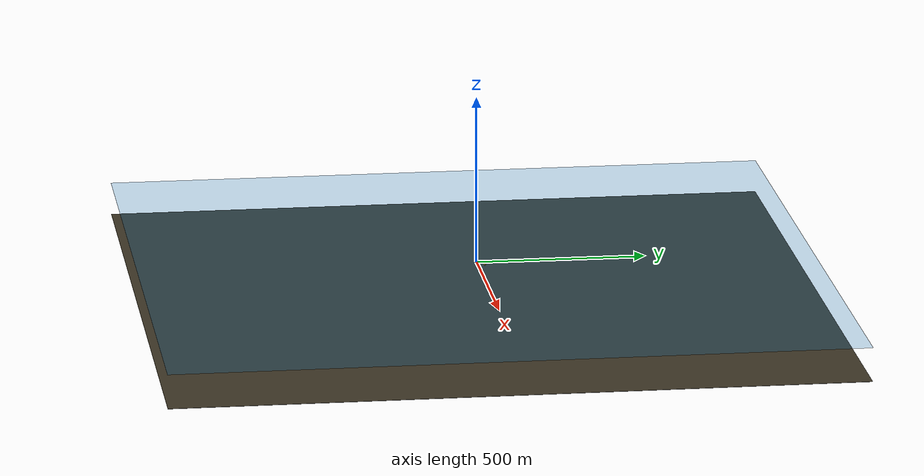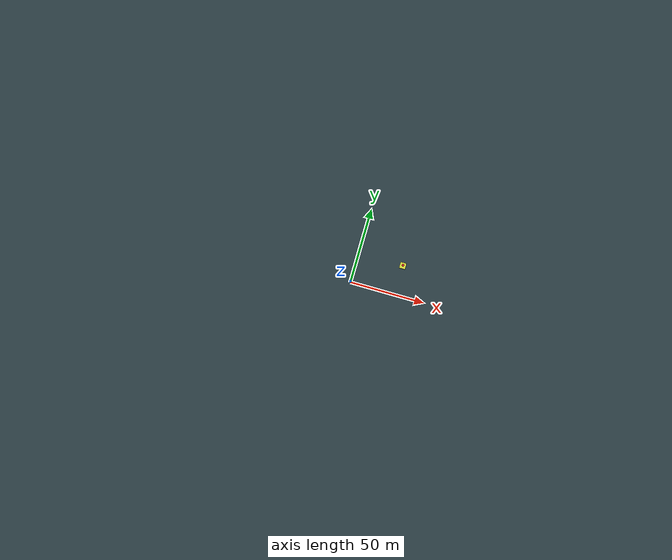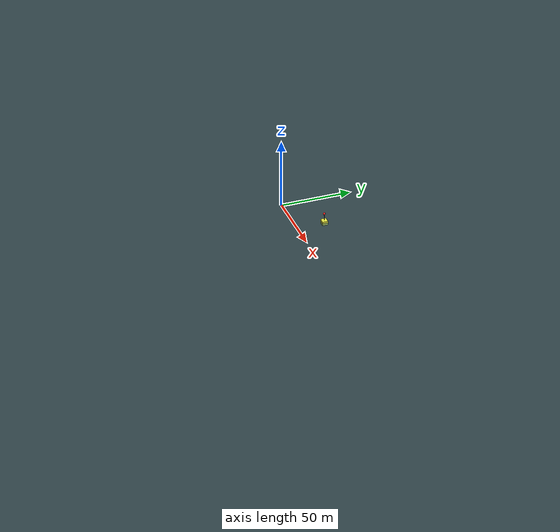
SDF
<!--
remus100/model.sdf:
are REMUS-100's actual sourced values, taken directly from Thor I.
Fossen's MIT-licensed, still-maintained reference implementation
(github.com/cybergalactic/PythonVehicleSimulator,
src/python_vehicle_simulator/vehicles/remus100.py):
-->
<?xml version="1.0"?>
<sdf version="1.9">
  <world name="underwater_harbor_remus">

    <physics name="1ms" type="ignored">
      <max_step_size>0.004</max_step_size>
      <real_time_factor>1.0</real_time_factor>
    </physics>

    <plugin filename="gz-sim-physics-system"
            name="gz::sim::systems::Physics"/>
    <plugin filename="gz-sim-user-commands-system"
            name="gz::sim::systems::UserCommands"/>
    <plugin filename="gz-sim-scene-broadcaster-system"
            name="gz::sim::systems::SceneBroadcaster"/>
    <plugin filename="gz-sim-imu-system"
            name="gz::sim::systems::Imu"/>

    <plugin filename="gz-sim-buoyancy-system"
            name="gz::sim::systems::Buoyancy">
      <graded_buoyancy>
        <default_density>1025.0</default_density>
        <density_change>
          <above_depth>0</above_depth>
          <density>1.0</density>
        </density_change>
      </graded_buoyancy>
    </plugin>

    <gravity>0 0 -9.81</gravity>
    <magnetic_field>5.5645e-6 22.8758e-6 -42.3884e-6</magnetic_field>

    <spherical_coordinates>
      <surface_model>EARTH_WGS84</surface_model>
      <world_frame_orientation>ENU</world_frame_orientation>
      <latitude_deg>-33.724223</latitude_deg>
      <longitude_deg>150.679736</longitude_deg>
      <elevation>0</elevation>
      <heading_deg>0</heading_deg>
    </spherical_coordinates>

    <scene>
      <ambient>0.4 0.5 0.6 1.0</ambient>
      <background>0.1 0.25 0.45 1.0</background>
      <grid>false</grid>
    </scene>

    <light type="directional" name="sun">
      <cast_shadows>true</cast_shadows>
      <pose>0 0 50 0 0 0</pose>
      <diffuse>0.9 0.95 1.0 1</diffuse>
      <specular>0.2 0.2 0.2 1</specular>
      <direction>0.3 0.3 -1</direction>
    </light>

    <model name="seabed">
      <static>true</static>
      <pose>0 0 -100 0 0 0</pose>
      <link name="seabed_link">
        <collision name="seabed_collision">
          <geometry>
            <box><size>2000 2000 1.0</size></box>
          </geometry>
        </collision>
        <visual name="seabed_visual">
          <geometry>
            <box><size>2000 2000 1.0</size></box>
          </geometry>
          <material>
            <ambient>0.20 0.18 0.12 1</ambient>
            <diffuse>0.25 0.22 0.15 1</diffuse>
          </material>
        </visual>
      </link>
    </model>

    <model name="water_surface">
      <static>true</static>
      <pose>0 0 0 0 0 0</pose>
      <link name="water_surface_link">
        <visual name="water_surface_visual">
          <transparency>0.75</transparency>
          <geometry>
            <box><size>2000 2000 0.01</size></box>
          </geometry>
          <material>
            <ambient>0.0 0.3 0.5 0.5</ambient>
            <diffuse>0.0 0.4 0.7 0.5</diffuse>
          </material>
        </visual>
      </link>
    </model>

    <!-- The AUV, spawned ~2 m below the surface. -->
    <include>
      <uri>model://remus100</uri>
      <pose>0 0 -2 0 0 0</pose>
    </include>

    <!-- ground control station (the operator/GCS landmark) -->
    <include>
      <uri>model://ground_station</uri>
      <pose>30 20 0 0 0 0</pose>
    </include>
  </world>
</sdf>

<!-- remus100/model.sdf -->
<sdf version="1.9">
  <model name="remus100">
    <pose>0 0 0 0 0 0</pose>

    <link name="base_link">
      <inertial>
        <pose>0.0 0.0 -0.02 0 0 0</pose>
        <mass>31.9</mass>
        <inertia>
          <ixx>0.1152</ixx>
          <ixy>0</ixy>
          <ixz>0</ixz>
          <iyy>4.1408</iyy>
          <iyz>0</iyz>
          <izz>4.1408</izz>
        </inertia>
      </inertial>

      <collision name="base_link_collision">
        <geometry>
          <box><size>1.6 0.14013 0.14013</size></box>
        </geometry>
      </collision>

      <visual name="base_link_visual">
        <geometry>
          <box><size>1.6 0.14013 0.14013</size></box>
        </geometry>
        <material>
          <diffuse>0.85 0.65 0.13 1</diffuse>
          <ambient>0.6 0.45 0.1 1</ambient>
          <specular>0.5 0.5 0.5 1</specular>
        </material>
      </visual>

      <sensor name="imu_sensor" type="imu">
        <pose>0 0 0 3.142 0 0</pose>
        <always_on>1</always_on>
        <update_rate>1000.0</update_rate>
      </sensor>
    </link>

    <!-- Hydrodynamics: real Cd=0.42-derived surge drag, side-profile-area
         derived sway/heave drag, live-tuned angular damping (see header). -->
    <plugin
        filename="gz-sim-hydrodynamics-system"
        name="gz::sim::systems::Hydrodynamics">
      <link_name>base_link</link_name>
      <water_density>1025.0</water_density>
      <xDotU>0</xDotU>
      <yDotV>0</yDotV>
      <zDotW>0</zDotW>
      <kDotP>0</kDotP>
      <mDotQ>0</mDotQ>
      <nDotR>0</nDotR>
      <xU>0</xU>
      <yV>0</yV>
      <zW>0</zW>
      <kP>-5</kP>
      <mQ>-8</mQ>
      <nR>-8</nR>
      <xUabsU>-6.11</xUabsU>
      <yVabsV>-65.5</yVabsV>
      <zWabsW>-65.5</zWabsW>
      <kPabsP>-8</kPabsP>
      <mQabsQ>-15</mQabsQ>
      <nRabsR>-15</nRabsR>
    </plugin>

    <link name="thruster1">
      <pose>0.5 -0.095 0.0 -1.571 1.571 -0.785</pose>
      <inertial>
        <mass>0.05</mass>
        <inertia>
          <ixx>0.0005</ixx><ixy>0</ixy><ixz>0</ixz>
          <iyy>0.0005</iyy><iyz>0</iyz><izz>0.0005</izz>
        </inertia>
      </inertial>
      <visual name="thruster_visual">
        <geometry><cylinder><radius>0.03</radius><length>0.015</length></cylinder></geometry>
        <material><diffuse>0.1 0.1 0.1 1</diffuse><ambient>0.1 0.1 0.1 1</ambient></material>
      </visual>
    </link>
    <link name="thruster2">
      <pose>0.5 0.095 0.0 -1.571 1.571 -2.356</pose>
      <inertial>
        <mass>0.05</mass>
        <inertia>
          <ixx>0.0005</ixx><ixy>0</ixy><ixz>0</ixz>
          <iyy>0.0005</iyy><iyz>0</iyz><izz>0.0005</izz>
        </inertia>
      </inertial>
      <visual name="thruster_visual">
        <geometry><cylinder><radius>0.03</radius><length>0.015</length></cylinder></geometry>
        <material><diffuse>0.1 0.1 0.1 1</diffuse><ambient>0.1 0.1 0.1 1</ambient></material>
      </visual>
    </link>
    <link name="thruster3">
      <pose>-0.5 -0.095 0.0 -1.571 1.571 0.785</pose>
      <inertial>
        <mass>0.05</mass>
        <inertia>
          <ixx>0.0005</ixx><ixy>0</ixy><ixz>0</ixz>
          <iyy>0.0005</iyy><iyz>0</iyz><izz>0.0005</izz>
        </inertia>
      </inertial>
      <visual name="thruster_visual">
        <geometry><cylinder><radius>0.03</radius><length>0.015</length></cylinder></geometry>
        <material><diffuse>0.1 0.1 0.1 1</diffuse><ambient>0.1 0.1 0.1 1</ambient></material>
      </visual>
    </link>
    <link name="thruster4">
      <pose>-0.5 0.095 0.0 -1.571 1.571 2.356</pose>
      <inertial>
        <mass>0.05</mass>
        <inertia>
          <ixx>0.0005</ixx><ixy>0</ixy><ixz>0</ixz>
          <iyy>0.0005</iyy><iyz>0</iyz><izz>0.0005</izz>
        </inertia>
      </inertial>
      <visual name="thruster_visual">
        <geometry><cylinder><radius>0.03</radius><length>0.015</length></cylinder></geometry>
        <material><diffuse>0.1 0.1 0.1 1</diffuse><ambient>0.1 0.1 0.1 1</ambient></material>
      </visual>
    </link>

    <!-- 2 vertical thrusters (heave/roll), mounted at the hull surface. -->
    <link name="thruster5">
      <pose>0.0 -0.095 0.08 0 0 0</pose>
      <inertial>
        <mass>0.05</mass>
        <inertia>
          <ixx>0.0005</ixx><ixy>0</ixy><ixz>0</ixz>
          <iyy>0.0005</iyy><iyz>0</iyz><izz>0.0005</izz>
        </inertia>
      </inertial>
      <visual name="thruster_visual">
        <geometry><cylinder><radius>0.03</radius><length>0.015</length></cylinder></geometry>
        <material><diffuse>0.1 0.1 0.1 1</diffuse><ambient>0.1 0.1 0.1 1</ambient></material>
      </visual>
    </link>
    <link name="thruster6">
      <pose>0.0 0.095 0.08 0 0 0</pose>
      <inertial>
        <mass>0.05</mass>
        <inertia>
          <ixx>0.0005</ixx><ixy>0</ixy><ixz>0</ixz>
          <iyy>0.0005</iyy><iyz>0</iyz><izz>0.0005</izz>
        </inertia>
      </inertial>
      <visual name="thruster_visual">
        <geometry><cylinder><radius>0.03</radius><length>0.015</length></cylinder></geometry>
        <material><diffuse>0.1 0.1 0.1 1</diffuse><ambient>0.1 0.1 0.1 1</ambient></material>
      </visual>
    </link>

    <joint name="thruster1_joint" type="revolute">
      <parent>base_link</parent><child>thruster1</child>
      <axis><xyz>0 0 -1</xyz></axis>
    </joint>
    <joint name="thruster2_joint" type="revolute">
      <parent>base_link</parent><child>thruster2</child>
      <axis><xyz>0 0 -1</xyz></axis>
    </joint>
    <joint name="thruster3_joint" type="revolute">
      <parent>base_link</parent><child>thruster3</child>
      <axis><xyz>0 0 -1</xyz></axis>
    </joint>
    <joint name="thruster4_joint" type="revolute">
      <parent>base_link</parent><child>thruster4</child>
      <axis><xyz>0 0 -1</xyz></axis>
    </joint>
    <joint name="thruster5_joint" type="revolute">
      <parent>base_link</parent><child>thruster5</child>
      <axis><xyz>0 0 -1</xyz></axis>
    </joint>
    <joint name="thruster6_joint" type="revolute">
      <parent>base_link</parent><child>thruster6</child>
      <axis><xyz>0 0 -1</xyz></axis>
    </joint>

    <!-- Thrust scaled from BlueROV2's own (mass ratio 31.9/10 ~= 3.19),
         moderated for controllable rather than toy-like acceleration —
         see header derivation. -->
    <plugin filename="gz-sim-thruster-system" name="gz::sim::systems::Thruster">
      <namespace>remus100</namespace>
      <joint_name>thruster1_joint</joint_name>
      <thrust_coefficient>0.02</thrust_coefficient>
      <fluid_density>1025.0</fluid_density>
      <propeller_diameter>0.06</propeller_diameter>
      <velocity_control>true</velocity_control>
      <use_angvel_cmd>False</use_angvel_cmd>
    </plugin>
    <plugin filename="gz-sim-thruster-system" name="gz::sim::systems::Thruster">
      <namespace>remus100</namespace>
      <joint_name>thruster2_joint</joint_name>
      <thrust_coefficient>0.02</thrust_coefficient>
      <fluid_density>1025.0</fluid_density>
      <propeller_diameter>0.06</propeller_diameter>
      <velocity_control>true</velocity_control>
      <use_angvel_cmd>False</use_angvel_cmd>
    </plugin>
    <plugin filename="gz-sim-thruster-system" name="gz::sim::systems::Thruster">
      <namespace>remus100</namespace>
      <joint_name>thruster3_joint</joint_name>
      <thrust_coefficient>-0.02</thrust_coefficient>
      <fluid_density>1025.0</fluid_density>
      <propeller_diameter>0.06</propeller_diameter>
      <velocity_control>true</velocity_control>
      <use_angvel_cmd>False</use_angvel_cmd>
    </plugin>
    <plugin filename="gz-sim-thruster-system" name="gz::sim::systems::Thruster">
      <namespace>remus100</namespace>
      <joint_name>thruster4_joint</joint_name>
      <thrust_coefficient>-0.02</thrust_coefficient>
      <fluid_density>1025.0</fluid_density>
      <propeller_diameter>0.06</propeller_diameter>
      <velocity_control>true</velocity_control>
      <use_angvel_cmd>False</use_angvel_cmd>
    </plugin>
    <plugin filename="gz-sim-thruster-system" name="gz::sim::systems::Thruster">
      <namespace>remus100</namespace>
      <joint_name>thruster5_joint</joint_name>
      <thrust_coefficient>0.02</thrust_coefficient>
      <fluid_density>1025.0</fluid_density>
      <propeller_diameter>0.06</propeller_diameter>
      <velocity_control>true</velocity_control>
      <use_angvel_cmd>False</use_angvel_cmd>
    </plugin>
    <plugin filename="gz-sim-thruster-system" name="gz::sim::systems::Thruster">
      <namespace>remus100</namespace>
      <joint_name>thruster6_joint</joint_name>
      <thrust_coefficient>-0.02</thrust_coefficient>
      <fluid_density>1025.0</fluid_density>
      <propeller_diameter>0.06</propeller_diameter>
      <velocity_control>true</velocity_control>
      <use_angvel_cmd>False</use_angvel_cmd>
    </plugin>

    <plugin name="ArduPilotPlugin" filename="libArduPilotPlugin.so">
      <fdm_addr>127.0.0.1</fdm_addr>
      <fdm_port_in>9100</fdm_port_in>
      <connectionTimeoutMaxCount>5</connectionTimeoutMaxCount>
      <lock_step>1</lock_step>
      <modelXYZToAirplaneXForwardZDown>0 0 0 3.142 0 0</modelXYZToAirplaneXForwardZDown>
      <gazeboXYZToNED>0 0 0 3.142 0 1.571</gazeboXYZToNED>
      <imuName>imu_sensor</imuName>

      <control channel="0">
        <jointName>thruster1_joint</jointName>
        <servo_min>1100</servo_min><servo_max>1900</servo_max>
        <type>COMMAND</type>
        <cmd_topic>/model/remus100/joint/thruster1_joint/cmd_thrust</cmd_topic>
        <offset>-0.5</offset><multiplier>150</multiplier>
      </control>
      <control channel="1">
        <jointName>thruster2_joint</jointName>
        <servo_min>1100</servo_min><servo_max>1900</servo_max>
        <type>COMMAND</type>
        <cmd_topic>/model/remus100/joint/thruster2_joint/cmd_thrust</cmd_topic>
        <offset>-0.5</offset><multiplier>150</multiplier>
      </control>
      <control channel="2">
        <jointName>thruster3_joint</jointName>
        <servo_min>1100</servo_min><servo_max>1900</servo_max>
        <type>COMMAND</type>
        <cmd_topic>/model/remus100/joint/thruster3_joint/cmd_thrust</cmd_topic>
        <offset>-0.5</offset><multiplier>150</multiplier>
      </control>
      <control channel="3">
        <jointName>thruster4_joint</jointName>
        <servo_min>1100</servo_min><servo_max>1900</servo_max>
        <type>COMMAND</type>
        <cmd_topic>/model/remus100/joint/thruster4_joint/cmd_thrust</cmd_topic>
        <offset>-0.5</offset><multiplier>150</multiplier>
      </control>
      <control channel="4">
        <jointName>thruster5_joint</jointName>
        <servo_min>1100</servo_min><servo_max>1900</servo_max>
        <type>COMMAND</type>
        <cmd_topic>/model/remus100/joint/thruster5_joint/cmd_thrust</cmd_topic>
        <offset>-0.5</offset><multiplier>150</multiplier>
      </control>
      <control channel="5">
        <jointName>thruster6_joint</jointName>
        <servo_min>1100</servo_min><servo_max>1900</servo_max>
        <type>COMMAND</type>
        <cmd_topic>/model/remus100/joint/thruster6_joint/cmd_thrust</cmd_topic>
        <offset>-0.5</offset><multiplier>150</multiplier>
      </control>
    </plugin>

    <plugin filename="gz-sim-odometry-publisher-system" name="gz::sim::systems::OdometryPublisher">
      <odom_frame>map</odom_frame>
      <robot_base_frame>base_link</robot_base_frame>
      <dimensions>3</dimensions>
      <odom_publish_frequency>100</odom_publish_frequency>
    </plugin>
    <plugin filename="gz-sim-joint-state-publisher-system" name="gz::sim::systems::JointStatePublisher"></plugin>
    <plugin filename="gz-sim-imu-system" name="gz::sim::systems::Imu"></plugin>

  </model>
</sdf>

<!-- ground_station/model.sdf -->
<sdf version="1.9">
  <model name="ground_station">
    <static>true</static>
    <link name="base">
      <visual name="hut">
        <geometry><box><size>4 4 3</size></box></geometry>
        <material><ambient>0.85 0.85 0.2 1</ambient><diffuse>0.9 0.9 0.25 1</diffuse></material>
      </visual>
      <visual name="mast">
        <pose>0 0 4.0 0 0 0</pose>
        <geometry><cylinder><radius>0.12</radius><length>5</length></cylinder></geometry>
        <material><ambient>0.2 0.2 0.2 1</ambient><diffuse>0.3 0.3 0.3 1</diffuse></material>
      </visual>
      <visual name="dish">
        <pose>0 0 6.6 0 0 0</pose>
        <geometry><sphere><radius>0.8</radius></sphere></geometry>
        <material><ambient>0.9 0.1 0.1 1</ambient><diffuse>1 0.15 0.15 1</diffuse></material>
      </visual>
      <collision name="c"><geometry><box><size>4 4 3</size></box></geometry></collision>
    </link>
  </model>
</sdf>
